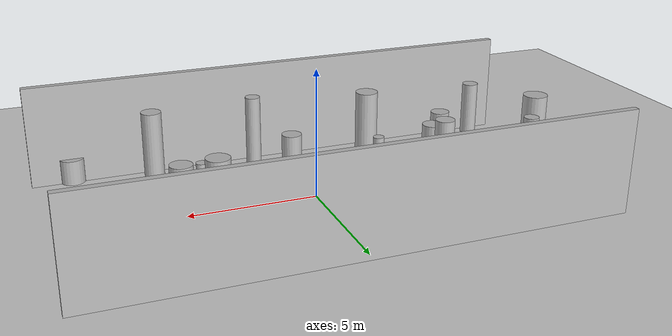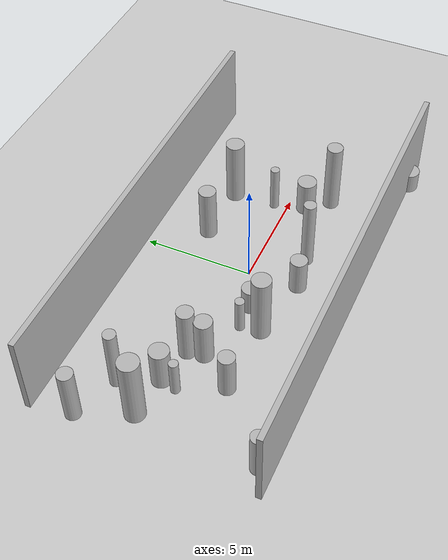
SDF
<?xml version="1.0"?>
<sdf version="1.4">
  <world name="default">
    <gui>
      <camera name="user_camera">
        <pose>-20 -30 40 0 0.66 0.83</pose>
      </camera>
    </gui>
    <include>
      <uri>model://ground_plane</uri>
    </include>
    <include>
      <uri>model://sun</uri>
    </include>
    <scene>
      <shadows>0</shadows>
    </scene>
    <model name="forest">
      <static>true</static>
      <link name="cylinder0">
        <pose>8.412355385916179 -4.77243593171467 0.49068177338160224 0 0 0 </pose>
        <visual name="visual">
          <geometry>
            <cylinder>
              <radius>0.47981489853606296</radius>
              <length>0.9813635467632045</length>
            </cylinder>
          </geometry>
        </visual>
        <collision name="collision">
          <geometry>
            <cylinder>
              <radius>0.47981489853606296</radius>
              <length>0.9813635467632045</length>
            </cylinder>
          </geometry>
          <max_contacts>0</max_contacts>
        </collision>
      </link>
      <link name="cylinder1">
        <pose>-4.871442902655955 -0.11259066785980298 1.1215393069141442 0 0 0 </pose>
        <visual name="visual">
          <geometry>
            <cylinder>
              <radius>0.40472578687953564</radius>
              <length>2.2430786138282883</length>
            </cylinder>
          </geometry>
        </visual>
        <collision name="collision">
          <geometry>
            <cylinder>
              <radius>0.40472578687953564</radius>
              <length>2.2430786138282883</length>
            </cylinder>
          </geometry>
          <max_contacts>0</max_contacts>
        </collision>
      </link>
      <link name="cylinder2">
        <pose>-8.560445962841714 1.184065187598434 1.700912115324991 0 0 0 </pose>
        <visual name="visual">
          <geometry>
            <cylinder>
              <radius>0.46079508100044936</radius>
              <length>3.401824230649982</length>
            </cylinder>
          </geometry>
        </visual>
        <collision name="collision">
          <geometry>
            <cylinder>
              <radius>0.46079508100044936</radius>
              <length>3.401824230649982</length>
            </cylinder>
          </geometry>
          <max_contacts>0</max_contacts>
        </collision>
      </link>
      <link name="cylinder3">
        <pose>-1.703268327602041 -0.8233708393908215 0.6261272441339226 0 0 0 </pose>
        <visual name="visual">
          <geometry>
            <cylinder>
              <radius>0.40020988245806066</radius>
              <length>1.2522544882678452</length>
            </cylinder>
          </geometry>
        </visual>
        <collision name="collision">
          <geometry>
            <cylinder>
              <radius>0.40020988245806066</radius>
              <length>1.2522544882678452</length>
            </cylinder>
          </geometry>
          <max_contacts>0</max_contacts>
        </collision>
      </link>
      <link name="cylinder4">
        <pose>-2.7627327782807427 -1.7472797277654561 1.6518200873332036 0 0 0 </pose>
        <visual name="visual">
          <geometry>
            <cylinder>
              <radius>0.4305572254606541</radius>
              <length>3.3036401746664072</length>
            </cylinder>
          </geometry>
        </visual>
        <collision name="collision">
          <geometry>
            <cylinder>
              <radius>0.4305572254606541</radius>
              <length>3.3036401746664072</length>
            </cylinder>
          </geometry>
          <max_contacts>0</max_contacts>
        </collision>
      </link>
      <link name="cylinder5">
        <pose>4.950615099838798 -0.8013568241486837 0.8601334588840097 0 0 0 </pose>
        <visual name="visual">
          <geometry>
            <cylinder>
              <radius>0.44589907505223614</radius>
              <length>1.7202669177680194</length>
            </cylinder>
          </geometry>
        </visual>
        <collision name="collision">
          <geometry>
            <cylinder>
              <radius>0.44589907505223614</radius>
              <length>1.7202669177680194</length>
            </cylinder>
          </geometry>
          <max_contacts>0</max_contacts>
        </collision>
      </link>
      <link name="cylinder6">
        <pose>-6.9098450521958 0.22113861766726117 0.8927426876618664 0 0 0 </pose>
        <visual name="visual">
          <geometry>
            <cylinder>
              <radius>0.2087875975464868</radius>
              <length>1.7854853753237327</length>
            </cylinder>
          </geometry>
        </visual>
        <collision name="collision">
          <geometry>
            <cylinder>
              <radius>0.2087875975464868</radius>
              <length>1.7854853753237327</length>
            </cylinder>
          </geometry>
          <max_contacts>0</max_contacts>
        </collision>
      </link>
      <link name="cylinder7">
        <pose>1.6577755045147562 2.767036226632853 1.306848278590048 0 0 0 </pose>
        <visual name="visual">
          <geometry>
            <cylinder>
              <radius>0.39782570557176256</radius>
              <length>2.613696557180096</length>
            </cylinder>
          </geometry>
        </visual>
        <collision name="collision">
          <geometry>
            <cylinder>
              <radius>0.39782570557176256</radius>
              <length>2.613696557180096</length>
            </cylinder>
          </geometry>
          <max_contacts>0</max_contacts>
        </collision>
      </link>
      <link name="cylinder8">
        <pose>-2.914020670895119 -0.8514073845328145 0.8561585443867465 0 0 0 </pose>
        <visual name="visual">
          <geometry>
            <cylinder>
              <radius>0.21597661902482018</radius>
              <length>1.712317088773493</length>
            </cylinder>
          </geometry>
        </visual>
        <collision name="collision">
          <geometry>
            <cylinder>
              <radius>0.21597661902482018</radius>
              <length>1.712317088773493</length>
            </cylinder>
          </geometry>
          <max_contacts>0</max_contacts>
        </collision>
      </link>
      <link name="cylinder9">
        <pose>-7.5054890839628 2.60507381585903 1.5513675424463433 0 0 0 </pose>
        <visual name="visual">
          <geometry>
            <cylinder>
              <radius>0.2797818257179948</radius>
              <length>3.1027350848926867</length>
            </cylinder>
          </geometry>
        </visual>
        <collision name="collision">
          <geometry>
            <cylinder>
              <radius>0.2797818257179948</radius>
              <length>3.1027350848926867</length>
            </cylinder>
          </geometry>
          <max_contacts>0</max_contacts>
        </collision>
      </link>
      <link name="cylinder10">
        <pose>-6.002179264842753 -1.6594264941581405 1.0527803701263907 0 0 0 </pose>
        <visual name="visual">
          <geometry>
            <cylinder>
              <radius>0.3697184463629295</radius>
              <length>2.1055607402527814</length>
            </cylinder>
          </geometry>
        </visual>
        <collision name="collision">
          <geometry>
            <cylinder>
              <radius>0.3697184463629295</radius>
              <length>2.1055607402527814</length>
            </cylinder>
          </geometry>
          <max_contacts>0</max_contacts>
        </collision>
      </link>
      <link name="cylinder11">
        <pose>-9.548247400477141 3.4248073559150694 1.3413692551440193 0 0 0 </pose>
        <visual name="visual">
          <geometry>
            <cylinder>
              <radius>0.3471851234057042</radius>
              <length>2.6827385102880386</length>
            </cylinder>
          </geometry>
        </visual>
        <collision name="collision">
          <geometry>
            <cylinder>
              <radius>0.3471851234057042</radius>
              <length>2.6827385102880386</length>
            </cylinder>
          </geometry>
          <max_contacts>0</max_contacts>
        </collision>
      </link>
      <link name="cylinder12">
        <pose>4.4395019002034495 2.635723518468134 1.6159754631014103 0 0 0 </pose>
        <visual name="visual">
          <geometry>
            <cylinder>
              <radius>0.42843972239532724</radius>
              <length>3.2319509262028205</length>
            </cylinder>
          </geometry>
        </visual>
        <collision name="collision">
          <geometry>
            <cylinder>
              <radius>0.42843972239532724</radius>
              <length>3.2319509262028205</length>
            </cylinder>
          </geometry>
          <max_contacts>0</max_contacts>
        </collision>
      </link>
      <link name="cylinder13">
        <pose>1.8102119727830726 -2.0685666369018705 1.7673283362912984 0 0 0 </pose>
        <visual name="visual">
          <geometry>
            <cylinder>
              <radius>0.28051468826172765</radius>
              <length>3.5346566725825967</length>
            </cylinder>
          </geometry>
        </visual>
        <collision name="collision">
          <geometry>
            <cylinder>
              <radius>0.28051468826172765</radius>
              <length>3.5346566725825967</length>
            </cylinder>
          </geometry>
          <max_contacts>0</max_contacts>
        </collision>
      </link>
      <link name="cylinder14">
        <pose>5.7358047537386465 -1.7753172438705223 1.758655404359621 0 0 0 </pose>
        <visual name="visual">
          <geometry>
            <cylinder>
              <radius>0.3678946676481548</radius>
              <length>3.517310808719242</length>
            </cylinder>
          </geometry>
        </visual>
        <collision name="collision">
          <geometry>
            <cylinder>
              <radius>0.3678946676481548</radius>
              <length>3.517310808719242</length>
            </cylinder>
          </geometry>
          <max_contacts>0</max_contacts>
        </collision>
      </link>
      <link name="cylinder15">
        <pose>-5.015676521697497 0.6056380657280211 1.3238915059336498 0 0 0 </pose>
        <visual name="visual">
          <geometry>
            <cylinder>
              <radius>0.37529674794575285</radius>
              <length>2.6477830118672996</length>
            </cylinder>
          </geometry>
        </visual>
        <collision name="collision">
          <geometry>
            <cylinder>
              <radius>0.37529674794575285</radius>
              <length>2.6477830118672996</length>
            </cylinder>
          </geometry>
          <max_contacts>0</max_contacts>
        </collision>
      </link>
      <link name="cylinder16">
        <pose>-8.853518511369048 -4.235905277764465 1.1082953686234105 0 0 0 </pose>
        <visual name="visual">
          <geometry>
            <cylinder>
              <radius>0.32744204830030965</radius>
              <length>2.216590737246821</length>
            </cylinder>
          </geometry>
        </visual>
        <collision name="collision">
          <geometry>
            <cylinder>
              <radius>0.32744204830030965</radius>
              <length>2.216590737246821</length>
            </cylinder>
          </geometry>
          <max_contacts>0</max_contacts>
        </collision>
      </link>
      <link name="cylinder17">
        <pose>4.515386259373376 0.6434423684893229 1.1486331682674997 0 0 0 </pose>
        <visual name="visual">
          <geometry>
            <cylinder>
              <radius>0.2082399988106241</radius>
              <length>2.2972663365349995</length>
            </cylinder>
          </geometry>
        </visual>
        <collision name="collision">
          <geometry>
            <cylinder>
              <radius>0.2082399988106241</radius>
              <length>2.2972663365349995</length>
            </cylinder>
          </geometry>
          <max_contacts>0</max_contacts>
        </collision>
      </link>
      <link name="cylinder18">
        <pose>0.18674448703834656 -2.2709551227235583 0.871306063128523 0 0 0 </pose>
        <visual name="visual">
          <geometry>
            <cylinder>
              <radius>0.39090495855241303</radius>
              <length>1.742612126257046</length>
            </cylinder>
          </geometry>
        </visual>
        <collision name="collision">
          <geometry>
            <cylinder>
              <radius>0.39090495855241303</radius>
              <length>1.742612126257046</length>
            </cylinder>
          </geometry>
          <max_contacts>0</max_contacts>
        </collision>
      </link>
      <link name="cylinder19">
        <pose>-6.688915320389435 0.9607779771428424 0.9711430091056861 0 0 0 </pose>
        <visual name="visual">
          <geometry>
            <cylinder>
              <radius>0.43722267329164305</radius>
              <length>1.9422860182113721</length>
            </cylinder>
          </geometry>
        </visual>
        <collision name="collision">
          <geometry>
            <cylinder>
              <radius>0.43722267329164305</radius>
              <length>1.9422860182113721</length>
            </cylinder>
          </geometry>
          <max_contacts>0</max_contacts>
        </collision>
      </link>
      <link name="cube0">
        <pose>0 5.25 2.0 0 0 0 </pose>
        <visual name="visual">
          <geometry>
            <box>
              <size>20 0.25 4.0</size>
            </box>
          </geometry>
        </visual>
        <collision name="collision">
          <geometry>
            <box>
              <size>20 0.25 4.0</size>
            </box>
          </geometry>
          <max_contacts>0</max_contacts>
        </collision>
      </link>
      <link name="cube1">
        <pose>0 -4.75 2.0 0 0 0 </pose>
        <visual name="visual">
          <geometry>
            <box>
              <size>20 0.25 4.0</size>
            </box>
          </geometry>
        </visual>
        <collision name="collision">
          <geometry>
            <box>
              <size>20 0.25 4.0</size>
            </box>
          </geometry>
          <max_contacts>0</max_contacts>
        </collision>
      </link>
    </model>
    <!-- Plugins -->
    <plugin name="gazebo_octomap" filename="librotors_gazebo_octomap_plugin.so"/>
    <plugin name="ros_interface_plugin" filename="librotors_gazebo_ros_interface_plugin.so"/>
    <!-- Physics -->
    <physics name="default_physics" default="0" type="ode">
      <max_step_size>0.004</max_step_size>
      <real_time_factor>1</real_time_factor>
      <real_time_update_rate>250</real_time_update_rate>
      <gravity>0 0 -9.8</gravity>
      <magnetic_field>6e-06 2.3e-05 -4.2e-05</magnetic_field>
      <ode>
        <solver>
          <type>quick</type>
          <iters>1000</iters>
          <sor>1.3</sor>
          <use_dynamic_moi_rescaling>0</use_dynamic_moi_rescaling>
        </solver>
        <constraints>
          <cfm>0</cfm>
          <erp>0.2</erp>
          <contact_max_correcting_vel>100</contact_max_correcting_vel>
          <contact_surface_layer>0.001</contact_surface_layer>
        </constraints>
      </ode>
    </physics>
  </world>
</sdf>
